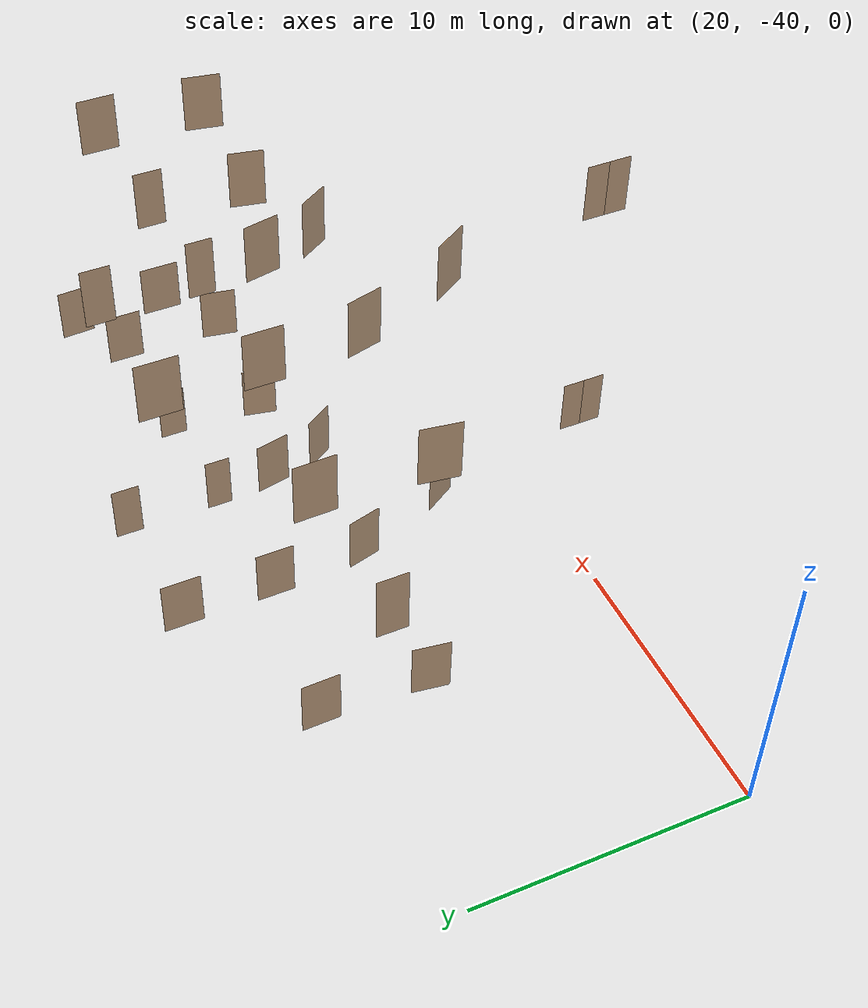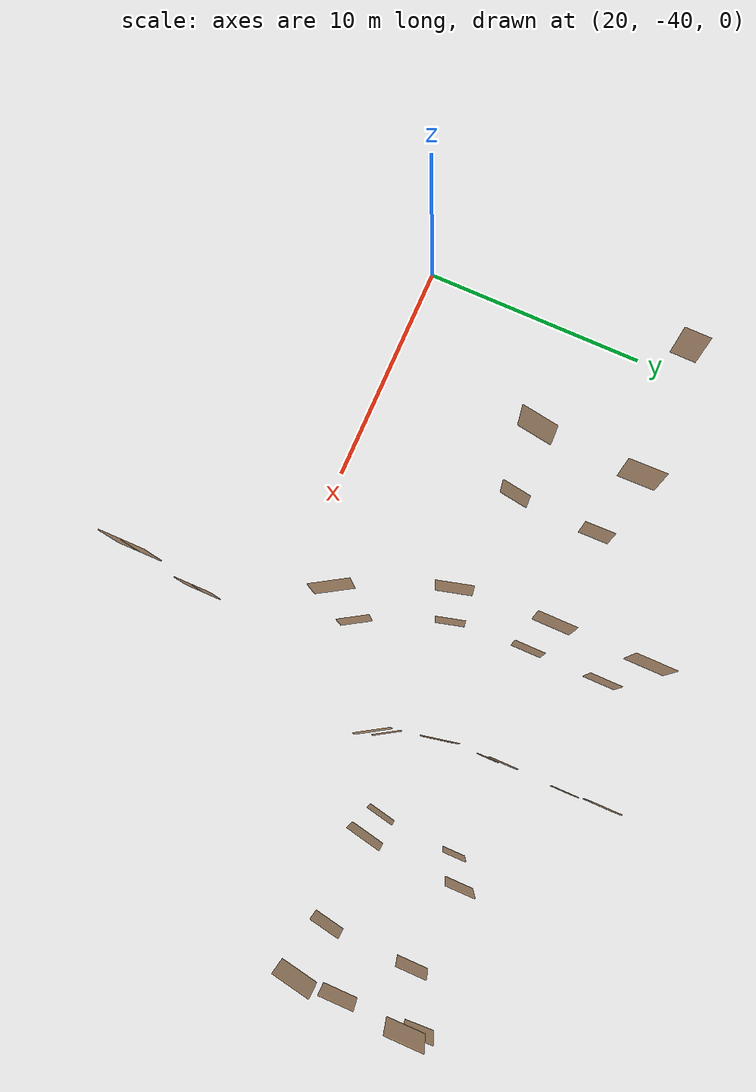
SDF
<sdf version="1.7">
 <world name="sim_world">
  <model name="L1_left_consult_rm_5_outer">
   <pose>28.19374447136651 -28.726235529402743 0.0 0 0 1.5919811640751727</pose>
   <static>true</static>
   <link name="right">
    <pose>0 0 1.11 0 0 0</pose>
    <visual name="right_visual">
     <geometry><box><size>1.37402272615404 0.03 2.2</size></box></geometry>
     <material>
      <ambient>0.5 0.25 0 0.6</ambient>
      <diffuse>0.5 0.25 0 0.6</diffuse>
      <pbr><metal><metalness>0.0</metalness></metal></pbr>
     </material>
    </visual>
    <collision name="right_collision">
     <geometry><box><size>1.37402272615404 0.03 2.2</size></box></geometry>
     <surface><contact><collide_bitmask>0x02</collide_bitmask></contact></surface>
    </collision>
    <inertial>
     <mass>50.0</mass>
     <inertia><ixx>20.17041666666667</ixx><iyy>28.03307688328242</iyy><izz>7.870160216615751</izz></inertia>
    </inertial>
   </link>
   <joint name="right_joint" type="prismatic">
    <parent>world</parent>
    <child>right</child>
    <axis>
     <xyz>1 0 0</xyz>
     <limit><lower>0.0</lower><upper>1.38402272615404</upper><effort>500.0</effort></limit>
    </axis>
   </joint>
  </model>
  <model name="L1_right_consult_rm_7_outer">
   <pose>35.78721395330952 -36.69358486212072 0.0 0 0 -1.0202506486553387</pose>
   <static>true</static>
   <link name="right">
    <pose>0 0 1.11 0 0 0</pose>
    <visual name="right_visual">
     <geometry><box><size>1.393912657434285 0.03 2.2</size></box></geometry>
     <material>
      <ambient>0.5 0.25 0 0.6</ambient>
      <diffuse>0.5 0.25 0 0.6</diffuse>
      <pbr><metal><metalness>0.0</metalness></metal></pbr>
     </material>
    </visual>
    <collision name="right_collision">
     <geometry><box><size>1.393912657434285 0.03 2.2</size></box></geometry>
     <surface><contact><collide_bitmask>0x02</collide_bitmask></contact></surface>
    </collision>
    <inertial>
     <mass>50.0</mass>
     <inertia><ixx>20.17041666666667</ixx><iyy>28.262468735647968</iyy><izz>8.099552068981295</izz></inertia>
    </inertial>
   </link>
   <joint name="right_joint" type="prismatic">
    <parent>world</parent>
    <child>right</child>
    <axis>
     <xyz>1 0 0</xyz>
     <limit><lower>0.0</lower><upper>1.403912657434285</upper><effort>500.0</effort></limit>
    </axis>
   </joint>
  </model>
  <model name="L1_right_consult_rm_8_outer">
   <pose>34.22348755817087 -32.956038229298905 0.0 0 0 -1.312559988648813</pose>
   <static>true</static>
   <link name="right">
    <pose>0 0 1.11 0 0 0</pose>
    <visual name="right_visual">
     <geometry><box><size>1.2887902244220548 0.03 2.2</size></box></geometry>
     <material>
      <ambient>0.5 0.25 0 0.6</ambient>
      <diffuse>0.5 0.25 0 0.6</diffuse>
      <pbr><metal><metalness>0.0</metalness></metal></pbr>
     </material>
    </visual>
    <collision name="right_collision">
     <geometry><box><size>1.2887902244220548 0.03 2.2</size></box></geometry>
     <surface><contact><collide_bitmask>0x02</collide_bitmask></contact></surface>
    </collision>
    <inertial>
     <mass>50.0</mass>
     <inertia><ixx>20.17041666666667</ixx><iyy>27.087417677357717</iyy><izz>6.924501010691044</izz></inertia>
    </inertial>
   </link>
   <joint name="right_joint" type="prismatic">
    <parent>world</parent>
    <child>right</child>
    <axis>
     <xyz>1 0 0</xyz>
     <limit><lower>0.0</lower><upper>1.2987902244220548</upper><effort>500.0</effort></limit>
    </axis>
   </joint>
  </model>
  <model name="L1_right_consult_rm_9_outer">
   <pose>33.97311257259339 -29.467264720587693 0.0 0 0 -1.5707963267948966</pose>
   <static>true</static>
   <link name="right">
    <pose>0 0 1.11 0 0 0</pose>
    <visual name="right_visual">
     <geometry><box><size>1.376027460482289 0.03 2.2</size></box></geometry>
     <material>
      <ambient>0.5 0.25 0 0.6</ambient>
      <diffuse>0.5 0.25 0 0.6</diffuse>
      <pbr><metal><metalness>0.0</metalness></metal></pbr>
     </material>
    </visual>
    <collision name="right_collision">
     <geometry><box><size>1.376027460482289 0.03 2.2</size></box></geometry>
     <surface><contact><collide_bitmask>0x02</collide_bitmask></contact></surface>
    </collision>
    <inertial>
     <mass>50.0</mass>
     <inertia><ixx>20.17041666666667</ixx><iyy>28.056048216672245</iyy><izz>7.893131550005574</izz></inertia>
    </inertial>
   </link>
   <joint name="right_joint" type="prismatic">
    <parent>world</parent>
    <child>right</child>
    <axis>
     <xyz>1 0 0</xyz>
     <limit><lower>0.0</lower><upper>1.386027460482289</upper><effort>500.0</effort></limit>
    </axis>
   </joint>
  </model>
  <model name="L1_right_consult_rm_10_outer">
   <pose>33.97311257259339 -26.0495923233722 0.0 0 0 -1.5707963267948966</pose>
   <static>true</static>
   <link name="right">
    <pose>0 0 1.11 0 0 0</pose>
    <visual name="right_visual">
     <geometry><box><size>1.4352559516941648 0.03 2.2</size></box></geometry>
     <material>
      <ambient>0.5 0.25 0 0.6</ambient>
      <diffuse>0.5 0.25 0 0.6</diffuse>
      <pbr><metal><metalness>0.0</metalness></metal></pbr>
     </material>
    </visual>
    <collision name="right_collision">
     <geometry><box><size>1.4352559516941648 0.03 2.2</size></box></geometry>
     <surface><contact><collide_bitmask>0x02</collide_bitmask></contact></surface>
    </collision>
    <inertial>
     <mass>50.0</mass>
     <inertia><ixx>20.17041666666667</ixx><iyy>28.749831861973014</iyy><izz>8.586915195306345</izz></inertia>
    </inertial>
   </link>
   <joint name="right_joint" type="prismatic">
    <parent>world</parent>
    <child>right</child>
    <axis>
     <xyz>1 0 0</xyz>
     <limit><lower>0.0</lower><upper>1.4452559516941648</upper><effort>500.0</effort></limit>
    </axis>
   </joint>
  </model>
  <model name="L1_right_consult_rm_5_outer">
   <pose>47.92979500788435 -28.691694550209633 0.0 0 0 1.5707963267948966</pose>
   <static>true</static>
   <link name="right">
    <pose>0 0 1.11 0 0 0</pose>
    <visual name="right_visual">
     <geometry><box><size>1.3734967885850524 0.03 2.2</size></box></geometry>
     <material>
      <ambient>0.5 0.25 0 0.6</ambient>
      <diffuse>0.5 0.25 0 0.6</diffuse>
      <pbr><metal><metalness>0.0</metalness></metal></pbr>
     </material>
    </visual>
    <collision name="right_collision">
     <geometry><box><size>1.3734967885850524 0.03 2.2</size></box></geometry>
     <surface><contact><collide_bitmask>0x02</collide_bitmask></contact></surface>
    </collision>
    <inertial>
     <mass>50.0</mass>
     <inertia><ixx>20.17041666666667</ixx><iyy>28.027055951056056</iyy><izz>7.864139284389385</izz></inertia>
    </inertial>
   </link>
   <joint name="right_joint" type="prismatic">
    <parent>world</parent>
    <child>right</child>
    <axis>
     <xyz>1 0 0</xyz>
     <limit><lower>0.0</lower><upper>1.3834967885850524</upper><effort>500.0</effort></limit>
    </axis>
   </joint>
  </model>
  <model name="L1_right_consult_rm_6_outer">
   <pose>47.7432521826084 -32.589575400946146 0.0 0 0 1.3919487051964479</pose>
   <static>true</static>
   <link name="right">
    <pose>0 0 1.11 0 0 0</pose>
    <visual name="right_visual">
     <geometry><box><size>1.3880429351730292 0.03 2.2</size></box></geometry>
     <material>
      <ambient>0.5 0.25 0 0.6</ambient>
      <diffuse>0.5 0.25 0 0.6</diffuse>
      <pbr><metal><metalness>0.0</metalness></metal></pbr>
     </material>
    </visual>
    <collision name="right_collision">
     <geometry><box><size>1.3880429351730292 0.03 2.2</size></box></geometry>
     <surface><contact><collide_bitmask>0x02</collide_bitmask></contact></surface>
    </collision>
    <inertial>
     <mass>50.0</mass>
     <inertia><ixx>20.17041666666667</ixx><iyy>28.194429957848996</iyy><izz>8.031513291182327</izz></inertia>
    </inertial>
   </link>
   <joint name="right_joint" type="prismatic">
    <parent>world</parent>
    <child>right</child>
    <axis>
     <xyz>1 0 0</xyz>
     <limit><lower>0.0</lower><upper>1.3980429351730292</upper><effort>500.0</effort></limit>
    </axis>
   </joint>
  </model>
  <model name="L1_clinic_b">
   <pose>37.230733433329526 -43.36706088227379 0.0 0 0 1.5707963267948966</pose>
   <link name="right">
    <pose>0.41352928733510375 0 1.11 0 0 0</pose>
    <visual name="right_visual">
     <geometry><box><size>0.8170585746702075 0.03 2.2</size></box></geometry>
     <material>
      <ambient>0.5 0.25 0 0.6</ambient>
      <diffuse>0.5 0.25 0 0.6</diffuse>
      <pbr><metal><metalness>0.0</metalness></metal></pbr>
     </material>
    </visual>
    <collision name="right_collision">
     <geometry><box><size>0.8170585746702075 0.03 2.2</size></box></geometry>
     <surface><contact><collide_bitmask>0x02</collide_bitmask></contact></surface>
    </collision>
    <inertial>
     <mass>50.0</mass>
     <inertia><ixx>20.17041666666667</ixx><iyy>22.9482696435088</iyy><izz>2.7853529768421295</izz></inertia>
    </inertial>
   </link>
   <joint name="right_joint" type="prismatic">
    <parent>world</parent>
    <child>right</child>
    <axis>
     <xyz>1 0 0</xyz>
     <limit><lower>0.0</lower><upper>0.8270585746702075</upper><effort>500.0</effort></limit>
    </axis>
   </joint>
   <link name="left">
    <pose>-0.41352928733510375 0 1.11 0 0 0</pose>
    <visual name="left_visual">
     <geometry><box><size>0.8170585746702075 0.03 2.2</size></box></geometry>
     <material>
      <ambient>0.5 0.25 0 0.6</ambient>
      <diffuse>0.5 0.25 0 0.6</diffuse>
      <pbr><metal><metalness>0.0</metalness></metal></pbr>
     </material>
    </visual>
    <collision name="left_collision">
     <geometry><box><size>0.8170585746702075 0.03 2.2</size></box></geometry>
     <surface><contact><collide_bitmask>0x02</collide_bitmask></contact></surface>
    </collision>
    <inertial>
     <mass>50.0</mass>
     <inertia><ixx>20.17041666666667</ixx><iyy>22.9482696435088</iyy><izz>2.7853529768421295</izz></inertia>
    </inertial>
   </link>
   <joint name="left_joint" type="prismatic">
    <parent>world</parent>
    <child>left</child>
    <axis>
     <xyz>1 0 0</xyz>
     <limit><lower>-0.8270585746702075</lower><upper>0.0</upper><effort>500.0</effort></limit>
    </axis>
   </joint>
   <plugin name="door" filename="libdoor.so">
    <v_max_door>0.2</v_max_door>
    <a_max_door>0.2</a_max_door>
    <a_nom_door>0.08</a_nom_door>
    <dx_min_door>0.001</dx_min_door>
    <f_max_door>100.0</f_max_door>
    <door name="L1_clinic_b" type="DoubleSlidingDoor" left_joint_name="left_joint" right_joint_name="right_joint"/>
   </plugin>
  </model>
  <model name="L1_left_consult_rm_6_outer">
   <pose>28.03191608015079 -32.60593054113306 0.0 0 0 1.424311827427732</pose>
   <static>true</static>
   <link name="right">
    <pose>0 0 1.11 0 0 0</pose>
    <visual name="right_visual">
     <geometry><box><size>1.350293476713609 0.03 2.2</size></box></geometry>
     <material>
      <ambient>0.5 0.25 0 0.6</ambient>
      <diffuse>0.5 0.25 0 0.6</diffuse>
      <pbr><metal><metalness>0.0</metalness></metal></pbr>
     </material>
    </visual>
    <collision name="right_collision">
     <geometry><box><size>1.350293476713609 0.03 2.2</size></box></geometry>
     <surface><contact><collide_bitmask>0x02</collide_bitmask></contact></surface>
    </collision>
    <inertial>
     <mass>50.0</mass>
     <inertia><ixx>20.17041666666667</ixx><iyy>27.763718638563862</iyy><izz>7.600801971897191</izz></inertia>
    </inertial>
   </link>
   <joint name="right_joint" type="prismatic">
    <parent>world</parent>
    <child>right</child>
    <axis>
     <xyz>1 0 0</xyz>
     <limit><lower>0.0</lower><upper>1.360293476713609</upper><effort>500.0</effort></limit>
    </axis>
   </joint>
  </model>
  <model name="L1_right_consult">
   <pose>50.16296488596596 -27.391548401984565 0.0 0 0 1.6204880391072638</pose>
   <static>true</static>
   <link name="right">
    <pose>0 0 1.11 0 0 0</pose>
    <visual name="right_visual">
     <geometry><box><size>1.295688480855341 0.03 2.2</size></box></geometry>
     <material>
      <ambient>0.5 0.25 0 0.6</ambient>
      <diffuse>0.5 0.25 0 0.6</diffuse>
      <pbr><metal><metalness>0.0</metalness></metal></pbr>
     </material>
    </visual>
    <collision name="right_collision">
     <geometry><box><size>1.295688480855341 0.03 2.2</size></box></geometry>
     <surface><contact><collide_bitmask>0x02</collide_bitmask></contact></surface>
    </collision>
    <inertial>
     <mass>50.0</mass>
     <inertia><ixx>20.17041666666667</ixx><iyy>27.161702664255095</iyy><izz>6.998785997588423</izz></inertia>
    </inertial>
   </link>
   <joint name="right_joint" type="prismatic">
    <parent>world</parent>
    <child>right</child>
    <axis>
     <xyz>1 0 0</xyz>
     <limit><lower>0.0</lower><upper>1.305688480855341</upper><effort>500.0</effort></limit>
    </axis>
   </joint>
  </model>
  <model name="L1_right_negative_air_pressure">
   <pose>50.20365755163267 -30.98576208607364 0.0 0 0 1.5688743082939884</pose>
   <link name="right">
    <pose>0 0 1.11 0 0 0</pose>
    <visual name="right_visual">
     <geometry><box><size>1.558804097655797 0.03 2.2</size></box></geometry>
     <material>
      <ambient>0.5 0.25 0 0.6</ambient>
      <diffuse>0.5 0.25 0 0.6</diffuse>
      <pbr><metal><metalness>0.0</metalness></metal></pbr>
     </material>
    </visual>
    <collision name="right_collision">
     <geometry><box><size>1.558804097655797 0.03 2.2</size></box></geometry>
     <surface><contact><collide_bitmask>0x02</collide_bitmask></contact></surface>
    </collision>
    <inertial>
     <mass>50.0</mass>
     <inertia><ixx>20.17041666666667</ixx><iyy>30.291125895285436</iyy><izz>10.128209228618767</izz></inertia>
    </inertial>
   </link>
   <joint name="right_joint" type="prismatic">
    <parent>world</parent>
    <child>right</child>
    <axis>
     <xyz>1 0 0</xyz>
     <limit><lower>0.0</lower><upper>1.568804097655797</upper><effort>500.0</effort></limit>
    </axis>
   </joint>
   <plugin name="door" filename="libdoor.so">
    <v_max_door>0.2</v_max_door>
    <a_max_door>0.2</a_max_door>
    <a_nom_door>0.08</a_nom_door>
    <dx_min_door>0.001</dx_min_door>
    <f_max_door>100.0</f_max_door>
    <door name="L1_right_negative_air_pressure" type="SlidingDoor" left_joint_name="empty_joint" right_joint_name="right_joint"/>
   </plugin>
  </model>
  <model name="L1_right_consult_rm_8_inner">
   <pose>38.98574093304107 -31.404170993423357 0.0 0 0 1.771758447609014</pose>
   <static>true</static>
   <link name="right">
    <pose>0 0 1.11 0 0 0</pose>
    <visual name="right_visual">
     <geometry><box><size>1.2956932791881277 0.03 2.2</size></box></geometry>
     <material>
      <ambient>0.5 0.25 0 0.6</ambient>
      <diffuse>0.5 0.25 0 0.6</diffuse>
      <pbr><metal><metalness>0.0</metalness></metal></pbr>
     </material>
    </visual>
    <collision name="right_collision">
     <geometry><box><size>1.2956932791881277 0.03 2.2</size></box></geometry>
     <surface><contact><collide_bitmask>0x02</collide_bitmask></contact></surface>
    </collision>
    <inertial>
     <mass>50.0</mass>
     <inertia><ixx>20.17041666666667</ixx><iyy>27.16175447388869</iyy><izz>6.9988378072220145</izz></inertia>
    </inertial>
   </link>
   <joint name="right_joint" type="revolute">
    <parent>world</parent>
    <child>right</child>
    <axis><xyz>0 0 -1</xyz><limit><lower>0</lower><upper>1.57</upper></limit></axis>
    <pose>0.6528466395940639 0 0 0 0 0</pose>
   </joint>
  </model>
  <model name="L1_right_consult_rm_6_inner">
   <pose>42.77321449175035 -32.35855736317837 0.0 0 0 -1.7708903021050455</pose>
   <static>true</static>
   <link name="right">
    <pose>0 0 1.11 0 0 0</pose>
    <visual name="right_visual">
     <geometry><box><size>1.2500822463848362 0.03 2.2</size></box></geometry>
     <material>
      <ambient>0.5 0.25 0 0.6</ambient>
      <diffuse>0.5 0.25 0 0.6</diffuse>
      <pbr><metal><metalness>0.0</metalness></metal></pbr>
     </material>
    </visual>
    <collision name="right_collision">
     <geometry><box><size>1.2500822463848362 0.03 2.2</size></box></geometry>
     <surface><contact><collide_bitmask>0x02</collide_bitmask></contact></surface>
    </collision>
    <inertial>
     <mass>50.0</mass>
     <inertia><ixx>20.17041666666667</ixx><iyy>26.677940094693998</iyy><izz>6.515023428027327</izz></inertia>
    </inertial>
   </link>
   <joint name="right_joint" type="revolute">
    <parent>world</parent>
    <child>right</child>
    <axis><xyz>0 0 -1</xyz><limit><lower>0</lower><upper>1.57</upper></limit></axis>
    <pose>0.6300411231924181 0 0 0 0 0</pose>
   </joint>
  </model>
  <model name="L1_right_consult_rm_7_inner">
   <pose>39.589911926464396 -33.49505788238917 0.0 0 0 2.12630436733766</pose>
   <static>true</static>
   <link name="right">
    <pose>0 0 1.11 0 0 0</pose>
    <visual name="right_visual">
     <geometry><box><size>1.2030296841661985 0.03 2.2</size></box></geometry>
     <material>
      <ambient>0.5 0.25 0 0.6</ambient>
      <diffuse>0.5 0.25 0 0.6</diffuse>
      <pbr><metal><metalness>0.0</metalness></metal></pbr>
     </material>
    </visual>
    <collision name="right_collision">
     <geometry><box><size>1.2030296841661985 0.03 2.2</size></box></geometry>
     <surface><contact><collide_bitmask>0x02</collide_bitmask></contact></surface>
    </collision>
    <inertial>
     <mass>50.0</mass>
     <inertia><ixx>20.17041666666667</ixx><iyy>26.197001754104267</iyy><izz>6.034085087437597</izz></inertia>
    </inertial>
   </link>
   <joint name="right_joint" type="revolute">
    <parent>world</parent>
    <child>right</child>
    <axis><xyz>0 0 -1</xyz><limit><lower>0</lower><upper>1.57</upper></limit></axis>
    <pose>0.6065148420830992 0 0 0 0 0</pose>
   </joint>
  </model>
  <model name="L1_right_consult_rm_9_inner">
   <pose>38.85542479135422 -29.212568747355895 0.0 0 0 1.5707963267948966</pose>
   <static>true</static>
   <link name="right">
    <pose>0 0 1.11 0 0 0</pose>
    <visual name="right_visual">
     <geometry><box><size>0.9140183069881915 0.03 2.2</size></box></geometry>
     <material>
      <ambient>0.5 0.25 0 0.6</ambient>
      <diffuse>0.5 0.25 0 0.6</diffuse>
      <pbr><metal><metalness>0.0</metalness></metal></pbr>
     </material>
    </visual>
    <collision name="right_collision">
     <geometry><box><size>0.9140183069881915 0.03 2.2</size></box></geometry>
     <surface><contact><collide_bitmask>0x02</collide_bitmask></contact></surface>
    </collision>
    <inertial>
     <mass>50.0</mass>
     <inertia><ixx>20.17041666666667</ixx><iyy>23.647622772956506</iyy><izz>3.4847061062898335</izz></inertia>
    </inertial>
   </link>
   <joint name="right_joint" type="prismatic">
    <parent>world</parent>
    <child>right</child>
    <axis>
     <xyz>1 0 0</xyz>
     <limit><lower>0.0</lower><upper>0.9240183069881915</upper><effort>500.0</effort></limit>
    </axis>
   </joint>
  </model>
  <model name="L1_right_consult_rm_5_inner">
   <pose>43.04524825968236 -28.930062305295976 0.0 0 0 -1.5707963267948966</pose>
   <static>true</static>
   <link name="right">
    <pose>0 0 1.11 0 0 0</pose>
    <visual name="right_visual">
     <geometry><box><size>1.0004111380331595 0.03 2.2</size></box></geometry>
     <material>
      <ambient>0.5 0.25 0 0.6</ambient>
      <diffuse>0.5 0.25 0 0.6</diffuse>
      <pbr><metal><metalness>0.0</metalness></metal></pbr>
     </material>
    </visual>
    <collision name="right_collision">
     <geometry><box><size>1.0004111380331595 0.03 2.2</size></box></geometry>
     <surface><contact><collide_bitmask>0x02</collide_bitmask></contact></surface>
    </collision>
    <inertial>
     <mass>50.0</mass>
     <inertia><ixx>20.17041666666667</ixx><iyy>24.33676018792001</iyy><izz>4.173843521253339</izz></inertia>
    </inertial>
   </link>
   <joint name="right_joint" type="prismatic">
    <parent>world</parent>
    <child>right</child>
    <axis>
     <xyz>1 0 0</xyz>
     <limit><lower>0.0</lower><upper>1.0104111380331595</upper><effort>500.0</effort></limit>
    </axis>
   </joint>
  </model>
  <model name="L1_right_consult_rm_10_inner">
   <pose>38.85542479135422 -25.72973154878661 0.0 0 0 1.5707963267948966</pose>
   <static>true</static>
   <link name="right">
    <pose>0 0 1.11 0 0 0</pose>
    <visual name="right_visual">
     <geometry><box><size>1.0088108149686563 0.03 2.2</size></box></geometry>
     <material>
      <ambient>0.5 0.25 0 0.6</ambient>
      <diffuse>0.5 0.25 0 0.6</diffuse>
      <pbr><metal><metalness>0.0</metalness></metal></pbr>
     </material>
    </visual>
    <collision name="right_collision">
     <geometry><box><size>1.0088108149686563 0.03 2.2</size></box></geometry>
     <surface><contact><collide_bitmask>0x02</collide_bitmask></contact></surface>
    </collision>
    <inertial>
     <mass>50.0</mass>
     <inertia><ixx>20.17041666666667</ixx><iyy>24.407080251657188</iyy><izz>4.2441635849905195</izz></inertia>
    </inertial>
   </link>
   <joint name="right_joint" type="prismatic">
    <parent>world</parent>
    <child>right</child>
    <axis>
     <xyz>1 0 0</xyz>
     <limit><lower>0.0</lower><upper>1.0188108149686563</upper><effort>500.0</effort></limit>
    </axis>
   </joint>
  </model>
  <model name="L2_left_consult_rm_5_outer">
   <pose>28.19374447136651 -28.726235529402743 10.0 0 0 1.5919811640751727</pose>
   <static>true</static>
   <link name="right">
    <pose>0 0 1.11 0 0 0</pose>
    <visual name="right_visual">
     <geometry><box><size>1.37402272615404 0.03 2.2</size></box></geometry>
     <material>
      <ambient>0.5 0.25 0 0.6</ambient>
      <diffuse>0.5 0.25 0 0.6</diffuse>
      <pbr><metal><metalness>0.0</metalness></metal></pbr>
     </material>
    </visual>
    <collision name="right_collision">
     <geometry><box><size>1.37402272615404 0.03 2.2</size></box></geometry>
     <surface><contact><collide_bitmask>0x02</collide_bitmask></contact></surface>
    </collision>
    <inertial>
     <mass>50.0</mass>
     <inertia><ixx>20.17041666666667</ixx><iyy>28.03307688328242</iyy><izz>7.870160216615751</izz></inertia>
    </inertial>
   </link>
   <joint name="right_joint" type="prismatic">
    <parent>world</parent>
    <child>right</child>
    <axis>
     <xyz>1 0 0</xyz>
     <limit><lower>0.0</lower><upper>1.38402272615404</upper><effort>500.0</effort></limit>
    </axis>
   </joint>
  </model>
  <model name="L2_right_consult_rm_7_outer">
   <pose>35.78721395330952 -36.69358486212072 10.0 0 0 -1.0202506486553387</pose>
   <static>true</static>
   <link name="right">
    <pose>0 0 1.11 0 0 0</pose>
    <visual name="right_visual">
     <geometry><box><size>1.393912657434285 0.03 2.2</size></box></geometry>
     <material>
      <ambient>0.5 0.25 0 0.6</ambient>
      <diffuse>0.5 0.25 0 0.6</diffuse>
      <pbr><metal><metalness>0.0</metalness></metal></pbr>
     </material>
    </visual>
    <collision name="right_collision">
     <geometry><box><size>1.393912657434285 0.03 2.2</size></box></geometry>
     <surface><contact><collide_bitmask>0x02</collide_bitmask></contact></surface>
    </collision>
    <inertial>
     <mass>50.0</mass>
     <inertia><ixx>20.17041666666667</ixx><iyy>28.262468735647968</iyy><izz>8.099552068981295</izz></inertia>
    </inertial>
   </link>
   <joint name="right_joint" type="prismatic">
    <parent>world</parent>
    <child>right</child>
    <axis>
     <xyz>1 0 0</xyz>
     <limit><lower>0.0</lower><upper>1.403912657434285</upper><effort>500.0</effort></limit>
    </axis>
   </joint>
  </model>
  <model name="L2_right_consult_rm_8_outer">
   <pose>34.22348755817087 -32.956038229298905 10.0 0 0 -1.312559988648813</pose>
   <static>true</static>
   <link name="right">
    <pose>0 0 1.11 0 0 0</pose>
    <visual name="right_visual">
     <geometry><box><size>1.2887902244220548 0.03 2.2</size></box></geometry>
     <material>
      <ambient>0.5 0.25 0 0.6</ambient>
      <diffuse>0.5 0.25 0 0.6</diffuse>
      <pbr><metal><metalness>0.0</metalness></metal></pbr>
     </material>
    </visual>
    <collision name="right_collision">
     <geometry><box><size>1.2887902244220548 0.03 2.2</size></box></geometry>
     <surface><contact><collide_bitmask>0x02</collide_bitmask></contact></surface>
    </collision>
    <inertial>
     <mass>50.0</mass>
     <inertia><ixx>20.17041666666667</ixx><iyy>27.087417677357717</iyy><izz>6.924501010691044</izz></inertia>
    </inertial>
   </link>
   <joint name="right_joint" type="prismatic">
    <parent>world</parent>
    <child>right</child>
    <axis>
     <xyz>1 0 0</xyz>
     <limit><lower>0.0</lower><upper>1.2987902244220548</upper><effort>500.0</effort></limit>
    </axis>
   </joint>
  </model>
  <model name="L2_right_consult_rm_9_outer">
   <pose>33.97311257259339 -29.467264720587693 10.0 0 0 -1.5707963267948966</pose>
   <static>true</static>
   <link name="right">
    <pose>0 0 1.11 0 0 0</pose>
    <visual name="right_visual">
     <geometry><box><size>1.376027460482289 0.03 2.2</size></box></geometry>
     <material>
      <ambient>0.5 0.25 0 0.6</ambient>
      <diffuse>0.5 0.25 0 0.6</diffuse>
      <pbr><metal><metalness>0.0</metalness></metal></pbr>
     </material>
    </visual>
    <collision name="right_collision">
     <geometry><box><size>1.376027460482289 0.03 2.2</size></box></geometry>
     <surface><contact><collide_bitmask>0x02</collide_bitmask></contact></surface>
    </collision>
    <inertial>
     <mass>50.0</mass>
     <inertia><ixx>20.17041666666667</ixx><iyy>28.056048216672245</iyy><izz>7.893131550005574</izz></inertia>
    </inertial>
   </link>
   <joint name="right_joint" type="prismatic">
    <parent>world</parent>
    <child>right</child>
    <axis>
     <xyz>1 0 0</xyz>
     <limit><lower>0.0</lower><upper>1.386027460482289</upper><effort>500.0</effort></limit>
    </axis>
   </joint>
  </model>
  <model name="L2_right_consult_rm_10_outer">
   <pose>33.97311257259339 -26.0495923233722 10.0 0 0 -1.5707963267948966</pose>
   <static>true</static>
   <link name="right">
    <pose>0 0 1.11 0 0 0</pose>
    <visual name="right_visual">
     <geometry><box><size>1.4352559516941648 0.03 2.2</size></box></geometry>
     <material>
      <ambient>0.5 0.25 0 0.6</ambient>
      <diffuse>0.5 0.25 0 0.6</diffuse>
      <pbr><metal><metalness>0.0</metalness></metal></pbr>
     </material>
    </visual>
    <collision name="right_collision">
     <geometry><box><size>1.4352559516941648 0.03 2.2</size></box></geometry>
     <surface><contact><collide_bitmask>0x02</collide_bitmask></contact></surface>
    </collision>
    <inertial>
     <mass>50.0</mass>
     <inertia><ixx>20.17041666666667</ixx><iyy>28.749831861973014</iyy><izz>8.586915195306345</izz></inertia>
    </inertial>
   </link>
   <joint name="right_joint" type="prismatic">
    <parent>world</parent>
    <child>right</child>
    <axis>
     <xyz>1 0 0</xyz>
     <limit><lower>0.0</lower><upper>1.4452559516941648</upper><effort>500.0</effort></limit>
    </axis>
   </joint>
  </model>
  <model name="L2_right_consult_rm_5_outer">
   <pose>47.92979500788435 -28.691694550209633 10.0 0 0 1.5707963267948966</pose>
   <static>true</static>
   <link name="right">
    <pose>0 0 1.11 0 0 0</pose>
    <visual name="right_visual">
     <geometry><box><size>1.3734967885850524 0.03 2.2</size></box></geometry>
     <material>
      <ambient>0.5 0.25 0 0.6</ambient>
      <diffuse>0.5 0.25 0 0.6</diffuse>
      <pbr><metal><metalness>0.0</metalness></metal></pbr>
     </material>
    </visual>
    <collision name="right_collision">
     <geometry><box><size>1.3734967885850524 0.03 2.2</size></box></geometry>
     <surface><contact><collide_bitmask>0x02</collide_bitmask></contact></surface>
    </collision>
    <inertial>
     <mass>50.0</mass>
     <inertia><ixx>20.17041666666667</ixx><iyy>28.027055951056056</iyy><izz>7.864139284389385</izz></inertia>
    </inertial>
   </link>
   <joint name="right_joint" type="prismatic">
    <parent>world</parent>
    <child>right</child>
    <axis>
     <xyz>1 0 0</xyz>
     <limit><lower>0.0</lower><upper>1.3834967885850524</upper><effort>500.0</effort></limit>
    </axis>
   </joint>
  </model>
  <model name="L2_right_consult_rm_6_outer">
   <pose>47.7432521826084 -32.589575400946146 10.0 0 0 1.3919487051964479</pose>
   <static>true</static>
   <link name="right">
    <pose>0 0 1.11 0 0 0</pose>
    <visual name="right_visual">
     <geometry><box><size>1.3880429351730292 0.03 2.2</size></box></geometry>
     <material>
      <ambient>0.5 0.25 0 0.6</ambient>
      <diffuse>0.5 0.25 0 0.6</diffuse>
      <pbr><metal><metalness>0.0</metalness></metal></pbr>
     </material>
    </visual>
    <collision name="right_collision">
     <geometry><box><size>1.3880429351730292 0.03 2.2</size></box></geometry>
     <surface><contact><collide_bitmask>0x02</collide_bitmask></contact></surface>
    </collision>
    <inertial>
     <mass>50.0</mass>
     <inertia><ixx>20.17041666666667</ixx><iyy>28.194429957848996</iyy><izz>8.031513291182327</izz></inertia>
    </inertial>
   </link>
   <joint name="right_joint" type="prismatic">
    <parent>world</parent>
    <child>right</child>
    <axis>
     <xyz>1 0 0</xyz>
     <limit><lower>0.0</lower><upper>1.3980429351730292</upper><effort>500.0</effort></limit>
    </axis>
   </joint>
  </model>
  <model name="L2_clinic_b">
   <pose>37.230733433329526 -43.36706088227379 10.0 0 0 1.5707963267948966</pose>
   <link name="right">
    <pose>0.41352928733510375 0 1.11 0 0 0</pose>
    <visual name="right_visual">
     <geometry><box><size>0.8170585746702075 0.03 2.2</size></box></geometry>
     <material>
      <ambient>0.5 0.25 0 0.6</ambient>
      <diffuse>0.5 0.25 0 0.6</diffuse>
      <pbr><metal><metalness>0.0</metalness></metal></pbr>
     </material>
    </visual>
    <collision name="right_collision">
     <geometry><box><size>0.8170585746702075 0.03 2.2</size></box></geometry>
     <surface><contact><collide_bitmask>0x02</collide_bitmask></contact></surface>
    </collision>
    <inertial>
     <mass>50.0</mass>
     <inertia><ixx>20.17041666666667</ixx><iyy>22.9482696435088</iyy><izz>2.7853529768421295</izz></inertia>
    </inertial>
   </link>
   <joint name="right_joint" type="prismatic">
    <parent>world</parent>
    <child>right</child>
    <axis>
     <xyz>1 0 0</xyz>
     <limit><lower>0.0</lower><upper>0.8270585746702075</upper><effort>500.0</effort></limit>
    </axis>
   </joint>
   <link name="left">
    <pose>-0.41352928733510375 0 1.11 0 0 0</pose>
    <visual name="left_visual">
     <geometry><box><size>0.8170585746702075 0.03 2.2</size></box></geometry>
     <material>
      <ambient>0.5 0.25 0 0.6</ambient>
      <diffuse>0.5 0.25 0 0.6</diffuse>
      <pbr><metal><metalness>0.0</metalness></metal></pbr>
     </material>
    </visual>
    <collision name="left_collision">
     <geometry><box><size>0.8170585746702075 0.03 2.2</size></box></geometry>
     <surface><contact><collide_bitmask>0x02</collide_bitmask></contact></surface>
    </collision>
    <inertial>
     <mass>50.0</mass>
     <inertia><ixx>20.17041666666667</ixx><iyy>22.9482696435088</iyy><izz>2.7853529768421295</izz></inertia>
    </inertial>
   </link>
   <joint name="left_joint" type="prismatic">
    <parent>world</parent>
    <child>left</child>
    <axis>
     <xyz>1 0 0</xyz>
     <limit><lower>-0.8270585746702075</lower><upper>0.0</upper><effort>500.0</effort></limit>
    </axis>
   </joint>
   <plugin name="door" filename="libdoor.so">
    <v_max_door>0.2</v_max_door>
    <a_max_door>0.2</a_max_door>
    <a_nom_door>0.08</a_nom_door>
    <dx_min_door>0.001</dx_min_door>
    <f_max_door>100.0</f_max_door>
    <door name="L2_clinic_b" type="DoubleSlidingDoor" left_joint_name="left_joint" right_joint_name="right_joint"/>
   </plugin>
  </model>
  <model name="L2_left_consult_rm_6_outer">
   <pose>28.03191608015079 -32.60593054113306 10.0 0 0 1.424311827427732</pose>
   <static>true</static>
   <link name="right">
    <pose>0 0 1.11 0 0 0</pose>
    <visual name="right_visual">
     <geometry><box><size>1.350293476713609 0.03 2.2</size></box></geometry>
     <material>
      <ambient>0.5 0.25 0 0.6</ambient>
      <diffuse>0.5 0.25 0 0.6</diffuse>
      <pbr><metal><metalness>0.0</metalness></metal></pbr>
     </material>
    </visual>
    <collision name="right_collision">
     <geometry><box><size>1.350293476713609 0.03 2.2</size></box></geometry>
     <surface><contact><collide_bitmask>0x02</collide_bitmask></contact></surface>
    </collision>
    <inertial>
     <mass>50.0</mass>
     <inertia><ixx>20.17041666666667</ixx><iyy>27.763718638563862</iyy><izz>7.600801971897191</izz></inertia>
    </inertial>
   </link>
   <joint name="right_joint" type="prismatic">
    <parent>world</parent>
    <child>right</child>
    <axis>
     <xyz>1 0 0</xyz>
     <limit><lower>0.0</lower><upper>1.360293476713609</upper><effort>500.0</effort></limit>
    </axis>
   </joint>
  </model>
  <model name="L2_left_consult_rm_5_inner">
   <pose>23.381523787546655 -28.936119764624465 10.0 0 0 -1.5707963267948966</pose>
   <static>true</static>
   <link name="right">
    <pose>0 0 1.11 0 0 0</pose>
    <visual name="right_visual">
     <geometry><box><size>0.9625587477404716 0.03 2.2</size></box></geometry>
     <material>
      <ambient>0.5 0.25 0 0.6</ambient>
      <diffuse>0.5 0.25 0 0.6</diffuse>
      <pbr><metal><metalness>0.0</metalness></metal></pbr>
     </material>
    </visual>
    <collision name="right_collision">
     <geometry><box><size>0.9625587477404716 0.03 2.2</size></box></geometry>
     <surface><contact><collide_bitmask>0x02</collide_bitmask></contact></surface>
    </collision>
    <inertial>
     <mass>50.0</mass>
     <inertia><ixx>20.17041666666667</ixx><iyy>24.027163928548777</iyy><izz>3.8642472618821038</izz></inertia>
    </inertial>
   </link>
   <joint name="right_joint" type="prismatic">
    <parent>world</parent>
    <child>right</child>
    <axis>
     <xyz>1 0 0</xyz>
     <limit><lower>0.0</lower><upper>0.9725587477404716</upper><effort>500.0</effort></limit>
    </axis>
   </joint>
  </model>
  <model name="L2_right_consult_rm_10_inner">
   <pose>38.85542479135422 -25.72973154878661 10.0 0 0 1.5707963267948966</pose>
   <static>true</static>
   <link name="right">
    <pose>0 0 1.11 0 0 0</pose>
    <visual name="right_visual">
     <geometry><box><size>1.0088108149686563 0.03 2.2</size></box></geometry>
     <material>
      <ambient>0.5 0.25 0 0.6</ambient>
      <diffuse>0.5 0.25 0 0.6</diffuse>
      <pbr><metal><metalness>0.0</metalness></metal></pbr>
     </material>
    </visual>
    <collision name="right_collision">
     <geometry><box><size>1.0088108149686563 0.03 2.2</size></box></geometry>
     <surface><contact><collide_bitmask>0x02</collide_bitmask></contact></surface>
    </collision>
    <inertial>
     <mass>50.0</mass>
     <inertia><ixx>20.17041666666667</ixx><iyy>24.407080251657188</iyy><izz>4.2441635849905195</izz></inertia>
    </inertial>
   </link>
   <joint name="right_joint" type="prismatic">
    <parent>world</parent>
    <child>right</child>
    <axis>
     <xyz>1 0 0</xyz>
     <limit><lower>0.0</lower><upper>1.0188108149686563</upper><effort>500.0</effort></limit>
    </axis>
   </joint>
  </model>
  <model name="L2_right_consult_rm_9_inner">
   <pose>38.85542479135422 -29.212568747355895 10.0 0 0 1.5707963267948966</pose>
   <static>true</static>
   <link name="right">
    <pose>0 0 1.11 0 0 0</pose>
    <visual name="right_visual">
     <geometry><box><size>0.9140183069881915 0.03 2.2</size></box></geometry>
     <material>
      <ambient>0.5 0.25 0 0.6</ambient>
      <diffuse>0.5 0.25 0 0.6</diffuse>
      <pbr><metal><metalness>0.0</metalness></metal></pbr>
     </material>
    </visual>
    <collision name="right_collision">
     <geometry><box><size>0.9140183069881915 0.03 2.2</size></box></geometry>
     <surface><contact><collide_bitmask>0x02</collide_bitmask></contact></surface>
    </collision>
    <inertial>
     <mass>50.0</mass>
     <inertia><ixx>20.17041666666667</ixx><iyy>23.647622772956506</iyy><izz>3.4847061062898335</izz></inertia>
    </inertial>
   </link>
   <joint name="right_joint" type="prismatic">
    <parent>world</parent>
    <child>right</child>
    <axis>
     <xyz>1 0 0</xyz>
     <limit><lower>0.0</lower><upper>0.9240183069881915</upper><effort>500.0</effort></limit>
    </axis>
   </joint>
  </model>
  <model name="L2_right_consult_rm_8_inner">
   <pose>38.98574093304107 -31.404170993423357 10.0 0 0 1.771758447609014</pose>
   <static>true</static>
   <link name="right">
    <pose>0 0 1.11 0 0 0</pose>
    <visual name="right_visual">
     <geometry><box><size>1.2956932791881277 0.03 2.2</size></box></geometry>
     <material>
      <ambient>0.5 0.25 0 0.6</ambient>
      <diffuse>0.5 0.25 0 0.6</diffuse>
      <pbr><metal><metalness>0.0</metalness></metal></pbr>
     </material>
    </visual>
    <collision name="right_collision">
     <geometry><box><size>1.2956932791881277 0.03 2.2</size></box></geometry>
     <surface><contact><collide_bitmask>0x02</collide_bitmask></contact></surface>
    </collision>
    <inertial>
     <mass>50.0</mass>
     <inertia><ixx>20.17041666666667</ixx><iyy>27.16175447388869</iyy><izz>6.9988378072220145</izz></inertia>
    </inertial>
   </link>
   <joint name="right_joint" type="revolute">
    <parent>world</parent>
    <child>right</child>
    <axis><xyz>0 0 -1</xyz><limit><lower>0</lower><upper>1.57</upper></limit></axis>
    <pose>0.6528466395940639 0 0 0 0 0</pose>
   </joint>
  </model>
  <model name="L2_right_consult_rm_7_inner">
   <pose>39.589911926464396 -33.49505788238917 10.0 0 0 2.12630436733766</pose>
   <static>true</static>
   <link name="right">
    <pose>0 0 1.11 0 0 0</pose>
    <visual name="right_visual">
     <geometry><box><size>1.2030296841661985 0.03 2.2</size></box></geometry>
     <material>
      <ambient>0.5 0.25 0 0.6</ambient>
      <diffuse>0.5 0.25 0 0.6</diffuse>
      <pbr><metal><metalness>0.0</metalness></metal></pbr>
     </material>
    </visual>
    <collision name="right_collision">
     <geometry><box><size>1.2030296841661985 0.03 2.2</size></box></geometry>
     <surface><contact><collide_bitmask>0x02</collide_bitmask></contact></surface>
    </collision>
    <inertial>
     <mass>50.0</mass>
     <inertia><ixx>20.17041666666667</ixx><iyy>26.197001754104267</iyy><izz>6.034085087437597</izz></inertia>
    </inertial>
   </link>
   <joint name="right_joint" type="revolute">
    <parent>world</parent>
    <child>right</child>
    <axis><xyz>0 0 -1</xyz><limit><lower>0</lower><upper>1.57</upper></limit></axis>
    <pose>0.6065148420830992 0 0 0 0 0</pose>
   </joint>
  </model>
  <model name="L2_right_consult_rm_6_inner">
   <pose>42.77321449175035 -32.35855736317837 10.0 0 0 -1.7708903021050455</pose>
   <static>true</static>
   <link name="right">
    <pose>0 0 1.11 0 0 0</pose>
    <visual name="right_visual">
     <geometry><box><size>1.2500822463848362 0.03 2.2</size></box></geometry>
     <material>
      <ambient>0.5 0.25 0 0.6</ambient>
      <diffuse>0.5 0.25 0 0.6</diffuse>
      <pbr><metal><metalness>0.0</metalness></metal></pbr>
     </material>
    </visual>
    <collision name="right_collision">
     <geometry><box><size>1.2500822463848362 0.03 2.2</size></box></geometry>
     <surface><contact><collide_bitmask>0x02</collide_bitmask></contact></surface>
    </collision>
    <inertial>
     <mass>50.0</mass>
     <inertia><ixx>20.17041666666667</ixx><iyy>26.677940094693998</iyy><izz>6.515023428027327</izz></inertia>
    </inertial>
   </link>
   <joint name="right_joint" type="revolute">
    <parent>world</parent>
    <child>right</child>
    <axis><xyz>0 0 -1</xyz><limit><lower>0</lower><upper>1.57</upper></limit></axis>
    <pose>0.6300411231924181 0 0 0 0 0</pose>
   </joint>
  </model>
  <model name="L2_right_consult_rm_5_inner">
   <pose>43.04524825968236 -28.930062305295976 10.0 0 0 -1.5707963267948966</pose>
   <static>true</static>
   <link name="right">
    <pose>0 0 1.11 0 0 0</pose>
    <visual name="right_visual">
     <geometry><box><size>1.0004111380331595 0.03 2.2</size></box></geometry>
     <material>
      <ambient>0.5 0.25 0 0.6</ambient>
      <diffuse>0.5 0.25 0 0.6</diffuse>
      <pbr><metal><metalness>0.0</metalness></metal></pbr>
     </material>
    </visual>
    <collision name="right_collision">
     <geometry><box><size>1.0004111380331595 0.03 2.2</size></box></geometry>
     <surface><contact><collide_bitmask>0x02</collide_bitmask></contact></surface>
    </collision>
    <inertial>
     <mass>50.0</mass>
     <inertia><ixx>20.17041666666667</ixx><iyy>24.33676018792001</iyy><izz>4.173843521253339</izz></inertia>
    </inertial>
   </link>
   <joint name="right_joint" type="prismatic">
    <parent>world</parent>
    <child>right</child>
    <axis>
     <xyz>1 0 0</xyz>
     <limit><lower>0.0</lower><upper>1.0104111380331595</upper><effort>500.0</effort></limit>
    </axis>
   </joint>
  </model>
 </world>
</sdf>
